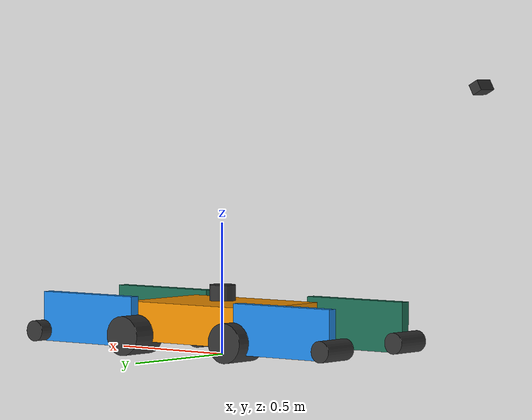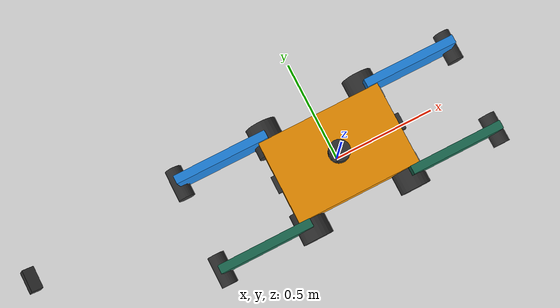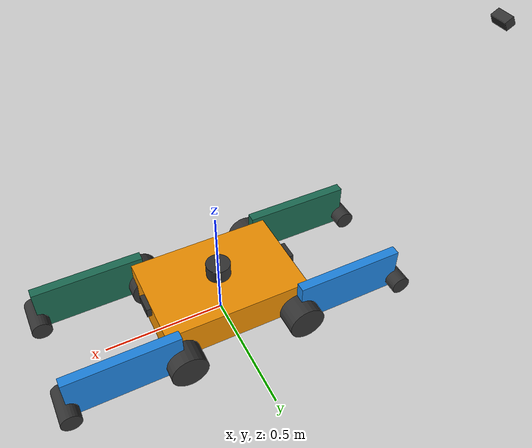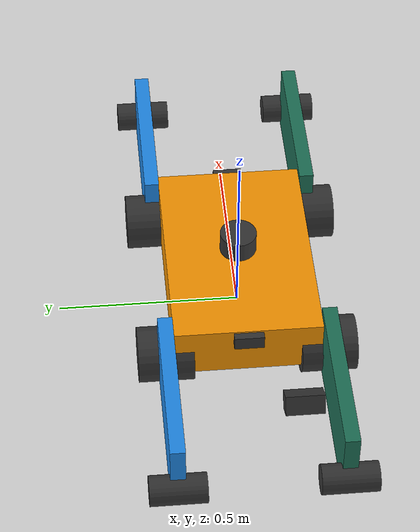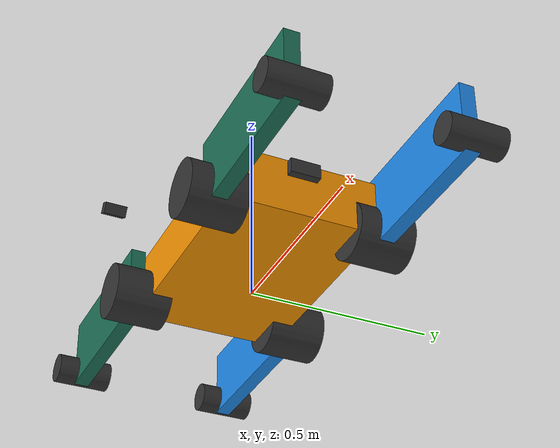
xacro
<?xml version="1.0"?>
<robot name="aegis_bot" xmlns:xacro="http://www.ros.org/wiki/xacro">

	<!-- =======================================
	______________	PROPERTIES_________________
	===========================================
	-->

	<xacro:property name="chassis_length" value="0.6"/>
	<xacro:property name="chassis_width" value="0.4"/>
	<xacro:property name="chassis_height" value="0.15"/>

	<xacro:property name="wheel_radius" value="0.075"/>
	<xacro:property name="wheel_width" value="0.15"/>

	<xacro:property name="flipper_length" value="0.45"/>
	<xacro:property name="flipper_width" value="0.04" />
	<xacro:property name="flipper_height" value="0.19" />

	<xacro:property name="idler_radius" value="0.04"/>

	<!-- ===========================================
	_______________MATERIALS_________________________
	=================================================
	 -->
	<material name="white">
		<color rgba="0.9 0.9 0.9 1"/>
	</material>
	<material name="dark_gray">
		<color rgba="0.2 0.2 0.2 1"/>
	</material>
	<material name="orange">
		<color rgba="0.95 0.57 0.0 1"/>
	</material>
	<material name="blue">
		<color rgba="0.12 0.53 0.9 1"/>
	</material>
	<material name="green">
		<color rgba="0.11 0.43 0.33 1"/>
	</material>
	<material name="red">
		<color rgba="0.9 0.1 0.1 1"/>
	</material>

	<!-- ===============================================
 	______________________MACROS________________________
	==================================================== -->

	<xacro:macro name="drive_wheel" params="name x y z">
		<link name="${name}">
			<visual>
				<geometry>
					<cylinder radius="${wheel_radius}" length="${wheel_width}"/>
				</geometry>
				<material name="dark_gray"/>
			</visual>
			<collision>
				<geometry>
					<cylinder radius="${wheel_radius}" length="${wheel_width}"/>
				</geometry>
			</collision>
			<inertial>
				<mass value="0.5"/>
				<inertia ixx="0.001640625" ixy="0" ixz="0"
					 iyy="0.001640625" iyz="0" izz="0.00140625"/>
			</inertial>
		</link>

		<joint name="${name}_joint" type="continuous">
			<parent link="base_link"/>
			<child link="${name}"/>
			<origin xyz="${x} ${y} ${z}" rpy="1.5708 0 0"/>
			<axis xyz="0 0 -1"/>
			<dynamics damping="0.05" friction="0.0"/>
		</joint>
	</xacro:macro>

	<!-- FLIPPER MACRO -->
	<xacro:macro name="flipper" params="name x y z rpy color">
		<link name="${name}">
			<visual>
				<origin xyz="${flipper_length/2} 0 0" rpy="0 0 0"/>
				<geometry>
					<box size="${flipper_length} ${flipper_width} ${flipper_height}"/>
				</geometry>
				<material name="${color}"/>
			</visual>
			<collision>
				<origin xyz="${flipper_length/2} 0 0.015" rpy="0 0 0"/>
				<geometry>
					<box size="${flipper_length} ${flipper_width} ${flipper_height - 0.03}"/>
				</geometry>
			</collision>
			<inertial>
				<origin xyz="${flipper_length/2} 0 0" rpy="0 0 0"/>
				<mass value="0.1"/>
				<inertia ixx="0.0003141667" ixy="0" ixz="0"
					  iyy="0.001988333" iyz="0" izz="0.001700833"/>
			</inertial>
		</link>

		<!--
		  Axis is -Y so a positive angle raises the flipper tip. With +Y the tip
		  (and its idler wheel) rotates down into the ground, which flips the robot.
		-->
		<joint name="${name}_joint" type="revolute">
			<parent link="base_link"/>
			<child link="${name}"/>
			<origin xyz="${x} ${y} ${z}" rpy="${rpy}"/>
			<axis xyz="0 -1 0"/>
			<limit lower="-1.5708" upper="1.5708" effort="60" velocity="1.0"/>
			<dynamics damping="0.2" friction="0.0"/>
		</joint>

		<!-- IDLER WHEEL at flipper tip -->

		<link name="${name}_idler">
			<visual>
				<geometry>
					<cylinder radius="${idler_radius}" length="${wheel_width}"/>
				</geometry>
				<material name="dark_gray"/>
			</visual>
			<collision>
				<geometry>
					<cylinder radius="${idler_radius}" length="${wheel_width}"/>
				</geometry>
			</collision>
			<inertial>
				<mass value="0.1"/>
				<inertia ixx="0.0002275" ixy="0" ixz="0"
					 iyy="0.0002275" iyz="0" izz="0.00008"/>
			</inertial>
		</link>

		<joint name="${name}_idler_joint" type="continuous">
			<parent link="${name}"/>
			<child link="${name}_idler"/>
			<origin xyz="${flipper_length} 0 ${-(flipper_height/2 - idler_radius)}" rpy="1.5708 0 0"/>
			<axis xyz="0 0 1"/>
			<dynamics damping="0.01" friction="0.0"/>
		</joint>

		<!--
		  Track/tip contact: rubber-like friction on both the flipper body and its
		  tip roller, otherwise they skid off the step (and drift sideways) as soon
		  as the climb starts.
		-->
		<gazebo reference="${name}">
			<mu1>1.5</mu1>
			<mu2>1.5</mu2>
			<kp>1000000</kp>
			<kd>1</kd>
		</gazebo>
		<gazebo reference="${name}_idler">
			<mu1>1.5</mu1>
			<mu2>1.5</mu2>
			<kp>1000000</kp>
			<kd>1</kd>
		</gazebo>
	</xacro:macro>

	<!-- ============================================
	 ================Base-footlink===================
	 ================================================ -->

	<link name="base_footprint"/>

	<joint name="base_footprint_joint" type="fixed">
		<parent link="base_footprint"/>
		<child link="base_link"/>
		<origin xyz="0 0 0.125" rpy="0 0 0"/>
	</joint>

	<!-- ========================================
	 _________________ BASE LINK _______________
	 ============================================ -->
	<link name="base_link">
		<visual>
			<geometry>
				<box size="${chassis_length} ${chassis_width} ${chassis_height}"/>
			</geometry>
			<material name="orange"/>
		</visual>
		<collision>
			<geometry>
				<box size="${chassis_length} ${chassis_width} ${chassis_height}"/>
			</geometry>
		</collision>
		<inertial>
			<mass value="8.0"/>
			<inertia ixx="0.1216667" ixy="0" ixz="0"
				 iyy="0.255" iyz="0" izz="0.3466667"/>
		</inertial>
	</link>

	<!-- ========================================
		DRIVE WHEELS
		x: front(+) / rear(-)
		y: left(+) / right(-)
		z: wheel sits at chassis bottom
	============================================= -->

	<xacro:drive_wheel name="front_left_wheel"
	 x="0.25" y="0.22" z="-0.05"/>
	<xacro:drive_wheel name="rear_left_wheel"
	 x="-0.25" y="0.22" z="-0.05"/>
	<xacro:drive_wheel name="front_right_wheel"
	 x="0.25" y="-0.22" z="-0.05"/>
	<xacro:drive_wheel name="rear_right_wheel"
	 x="-0.25" y="-0.22" z="-0.05"/>

	<!--==========================================
 	_____________FLIPPERS_________________________
	===Pivots at same axis as nearest drv whl====
	=============================================== -->

	<xacro:flipper name="front_left_flipper"
	x="0.25" y="0.22" z="0.0" rpy="0 0 0" color="blue"/>
	<xacro:flipper name="rear_left_flipper"
	x="-0.25" y="0.22" z="0.0" rpy="0 0 3.1416" color="blue"/>
	<xacro:flipper name="front_right_flipper"
	x="0.25" y="-0.22" z="0.0" rpy="0 0 0" color="green"/>
	<xacro:flipper name="rear_right_flipper"
	x="-0.25" y="-0.22" z="0.0" rpy="0 0 3.1416" color="green"/>

	<!-- ==============================================
	 _________________IMU______________________________
	================================================ -->

	<link name="imu-link">
		<visual>
			<geometry>
				<box size="0.03 0.03 0.01"/>
			</geometry>
			<material name="white"/>
		</visual>
		<collision>
			<geometry>
				<box size="0.03 0.03 0.01"/>
			</geometry>
		</collision>
		<inertial>
			<mass value="0.05"/>
			<inertia ixx="0.0000041667" ixy="0" ixz="0"
				 iyy="0.0000041667" iyz="0" izz="0.0000075"/>
		</inertial>
	</link>
	<joint name="imu_joint" type="fixed">
		<parent link="base_link"/>
		<child link="imu-link"/>
		<origin xyz="0 0 0.02" rpy="0 0 0"/>
	</joint>

	<!-- ==========================================
	_________________CAMERA________________________
	=========================================== -->
	<link name="camera_link">
		<visual>
			<geometry>
				<box size="0.04 0.08 0.04"/>
			</geometry>
			<material name="dark_gray"/>
		</visual>
		<collision>
			<geometry>
				<box size="0.04 0.08 0.04"/>
			</geometry>
		</collision>
		<inertial>
			<mass value="0.05"/>
			<inertia ixx="0.000033333" ixy="0" ixz="0"
				 iyy="0.000013333" iyz="0" izz="0.000033333"/>
		</inertial>
	</link>

	<joint name="camera_joint" type="fixed">
		<parent link="base_link" />
		<child link="camera_link"/>
		<origin xyz="0.3 0 0.05" rpy="0 0 0"/>
	</joint>

	<link name="rear_camera_link">
		<visual>
			<geometry>
				<box size="0.04 0.08 0.04"/>
			</geometry>
			<material name="dark_gray"/>
		</visual>
		<collision>
			<geometry>
				<box size="0.04 0.08 0.04"/>
			</geometry>
		</collision>
		<inertial>
			<mass value="0.05"/>
			<inertia ixx="0.000033333" ixy="0" ixz="0"
				 iyy="0.000013333" iyz="0" izz="0.000033333"/>
		</inertial>
	</link>

	<joint name="rear_camera_joint" type="fixed">
		<parent link="base_link"/>
		<child link="rear_camera_link"/>
		<origin xyz="-0.3 0 0.05" rpy="0 0 3.1416"/>
	</joint>

	<link name="third_person_camera_link">
		<visual>
			<geometry>
				<box size="0.04 0.08 0.04"/>
			</geometry>
			<material name="dark_gray"/>
		</visual>
		<collision>
			<geometry>
				<box size="0.04 0.08 0.04"/>
			</geometry>
		</collision>
		<inertial>
			<mass value="0.05"/>
			<inertia ixx="0.000033333" ixy="0" ixz="0"
				 iyy="0.000013333" iyz="0" izz="0.000033333"/>
		</inertial>
	</link>

	<joint name="third_person_camera_joint" type="fixed">
		<parent link="base_link"/>
		<child link="third_person_camera_link"/>
		<origin xyz="-1.2 0 0.9" rpy="0 0.5 0"/>
	</joint>

	<!-- ==========================================
	_________________ LIDAR _______________________
	=========================================== -->
	<link name="lidar_link">
		<visual>
			<geometry>
				<cylinder radius="0.05" length="0.06"/>
			</geometry>
			<material name="dark_gray"/>
		</visual>
		<collision>
			<geometry>
				<cylinder radius="0.05" length="0.06"/>
			</geometry>
		</collision>
		<inertial>
			<mass value="0.12"/>
			<inertia ixx="0.000111" ixy="0" ixz="0"
				 iyy="0.000111" iyz="0" izz="0.00015"/>
		</inertial>
	</link>

	<joint name="lidar_joint" type="fixed">
		<parent link="base_link"/>
		<child link="lidar_link"/>
		<origin xyz="0 0 0.11" rpy="0 0 0"/>
	</joint>

	<!-- ==========================================
	_________________ GAZEBO ______________________
	=========================================== -->

	<gazebo>
		<plugin name="diff_drive" filename="libgazebo_ros_diff_drive.so">
			<ros>
				<namespace>/</namespace>
				<remapping>cmd_vel:=cmd_vel_sim</remapping>
				<remapping>odom:=hardware/odometry</remapping>
			</ros>
			<update_rate>50</update_rate>
			<left_joint>front_left_wheel_joint</left_joint>
			<right_joint>front_right_wheel_joint</right_joint>
			<wheel_separation>0.44</wheel_separation>
			<wheel_diameter>0.15</wheel_diameter>
			<max_wheel_torque>50</max_wheel_torque>
			<max_wheel_acceleration>5.0</max_wheel_acceleration>
			<publish_odom>true</publish_odom>
			<publish_odom_tf>true</publish_odom_tf>
			<publish_wheel_tf>false</publish_wheel_tf>
			<odometry_frame>odom</odometry_frame>
			<robot_base_frame>base_footprint</robot_base_frame>
		</plugin>

		<plugin name="flipper_controller" filename="libflipper_controller.so">
		</plugin>

		<plugin name="joint_state_publisher" filename="libgazebo_ros_joint_state_publisher.so">
			<ros>
				<remapping>~/out:=joint_states</remapping>
			</ros>
			<update_rate>50</update_rate>
			<joint_name>front_left_wheel_joint</joint_name>
			<joint_name>front_right_wheel_joint</joint_name>
			<joint_name>rear_left_wheel_joint</joint_name>
			<joint_name>rear_right_wheel_joint</joint_name>
			<joint_name>front_left_flipper_joint</joint_name>
			<joint_name>front_right_flipper_joint</joint_name>
			<joint_name>rear_left_flipper_joint</joint_name>
			<joint_name>rear_right_flipper_joint</joint_name>
		</plugin>
	</gazebo>

	<gazebo reference="base_link">
		<material>Gazebo/Orange</material>
		<selfCollide>false</selfCollide>
	</gazebo>

	<gazebo reference="front_left_flipper">
		<material>Gazebo/Blue</material>
	</gazebo>
	<gazebo reference="rear_left_flipper">
		<material>Gazebo/Blue</material>
	</gazebo>
	<gazebo reference="front_right_flipper">
		<material>Gazebo/Green</material>
	</gazebo>
	<gazebo reference="rear_right_flipper">
		<material>Gazebo/Green</material>
	</gazebo>

	<gazebo reference="front_left_wheel">
		<mu1>1.0</mu1>
		<mu2>1.0</mu2>
		<kp>1000000</kp>
		<kd>1</kd>
	</gazebo>
	<gazebo reference="front_right_wheel">
		<mu1>1.0</mu1>
		<mu2>1.0</mu2>
		<kp>1000000</kp>
		<kd>1</kd>
	</gazebo>
	<gazebo reference="rear_left_wheel">
		<mu1>0.05</mu1>
		<mu2>0.05</mu2>
		<kp>1000000</kp>
		<kd>1</kd>
	</gazebo>
	<gazebo reference="rear_right_wheel">
		<mu1>0.05</mu1>
		<mu2>0.05</mu2>
		<kp>1000000</kp>
		<kd>1</kd>
	</gazebo>

	<gazebo reference="camera_link">
		<sensor type="camera" name="front_camera">
			<update_rate>15</update_rate>
			<always_on>true</always_on>
			<visualize>false</visualize>
			<camera name="front_camera">
				<horizontal_fov>1.2</horizontal_fov>
				<image>
					<width>480</width>
					<height>360</height>
					<format>R8G8B8</format>
				</image>
				<clip>
					<near>0.05</near>
					<far>30</far>
				</clip>
				<noise>
					<type>gaussian</type>
					<mean>0.0</mean>
					<stddev>0.002</stddev>
				</noise>
			</camera>
			<plugin name="front_camera_controller" filename="libgazebo_ros_camera.so">
				<ros>
					<namespace>/camera</namespace>
					<remapping>image_raw:=image_raw</remapping>
					<remapping>camera_info:=camera_info</remapping>
				</ros>
				<camera_name>front</camera_name>
				<frame_name>camera_link</frame_name>
			</plugin>
		</sensor>
	</gazebo>

	<gazebo reference="rear_camera_link">
		<sensor type="camera" name="rear_camera">
			<update_rate>10</update_rate>
			<always_on>true</always_on>
			<visualize>false</visualize>
			<camera name="rear_camera">
				<horizontal_fov>1.2</horizontal_fov>
				<image>
					<width>480</width>
					<height>360</height>
					<format>R8G8B8</format>
				</image>
				<clip>
					<near>0.05</near>
					<far>30</far>
				</clip>
			</camera>
			<plugin name="rear_camera_controller" filename="libgazebo_ros_camera.so">
				<ros>
					<namespace>/camera</namespace>
					<remapping>image_raw:=image_raw</remapping>
					<remapping>camera_info:=camera_info</remapping>
				</ros>
				<camera_name>rear</camera_name>
				<frame_name>rear_camera_link</frame_name>
			</plugin>
		</sensor>
	</gazebo>

	<gazebo reference="imu-link">
		<sensor type="imu" name="imu_sensor">
			<always_on>true</always_on>
			<update_rate>50</update_rate>
			<imu>
				<angular_velocity>
					<x><noise type="gaussian"><mean>0.0</mean><stddev>0.0002</stddev></noise></x>
					<y><noise type="gaussian"><mean>0.0</mean><stddev>0.0002</stddev></noise></y>
					<z><noise type="gaussian"><mean>0.0</mean><stddev>0.0002</stddev></noise></z>
				</angular_velocity>
				<linear_acceleration>
					<x><noise type="gaussian"><mean>0.0</mean><stddev>0.002</stddev></noise></x>
					<y><noise type="gaussian"><mean>0.0</mean><stddev>0.002</stddev></noise></y>
					<z><noise type="gaussian"><mean>0.0</mean><stddev>0.002</stddev></noise></z>
				</linear_acceleration>
			</imu>
			<plugin name="imu_plugin" filename="libgazebo_ros_imu_sensor.so">
				<ros>
					<namespace>/hardware</namespace>
					<remapping>~/out:=imu</remapping>
				</ros>
				<initial_orientation_as_reference>false</initial_orientation_as_reference>
			</plugin>
		</sensor>
	</gazebo>

	<gazebo reference="lidar_link">
		<sensor type="ray" name="lidar_sensor">
			<pose>0 0 0 0 0 0</pose>
			<visualize>false</visualize>
			<always_on>true</always_on>
			<update_rate>12</update_rate>
			<ray>
				<scan>
					<horizontal>
						<samples>720</samples>
						<resolution>1.0</resolution>
						<min_angle>-3.14159</min_angle>
						<max_angle>3.14159</max_angle>
					</horizontal>
				</scan>
				<range>
					<min>0.12</min>
					<max>12.0</max>
					<resolution>0.01</resolution>
				</range>
				<noise>
					<type>gaussian</type>
					<mean>0.0</mean>
					<stddev>0.01</stddev>
				</noise>
			</ray>
			<plugin name="lidar_controller" filename="libgazebo_ros_ray_sensor.so">
				<ros>
					<namespace>/</namespace>
					<remapping>~/out:=scan</remapping>
				</ros>
				<output_type>sensor_msgs/LaserScan</output_type>
				<frame_name>lidar_link</frame_name>
			</plugin>
		</sensor>
	</gazebo>

	<gazebo reference="third_person_camera_link">
		<sensor type="camera" name="third_person_camera">
			<update_rate>12</update_rate>
			<always_on>true</always_on>
			<visualize>false</visualize>
			<camera name="third_person_camera">
				<horizontal_fov>1.5</horizontal_fov>
				<image>
					<width>640</width>
					<height>480</height>
					<format>R8G8B8</format>
				</image>
				<clip>
					<near>0.1</near>
					<far>50</far>
				</clip>
			</camera>
			<plugin name="third_person_camera_controller" filename="libgazebo_ros_camera.so">
				<ros>
					<namespace>/camera</namespace>
					<remapping>image_raw:=image_raw</remapping>
					<remapping>camera_info:=camera_info</remapping>
				</ros>
				<camera_name>third_person</camera_name>
				<frame_name>third_person_camera_link</frame_name>
			</plugin>
		</sensor>
	</gazebo>

</robot>
